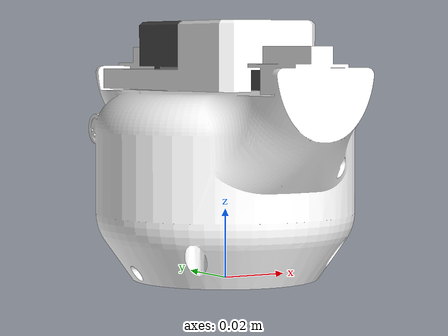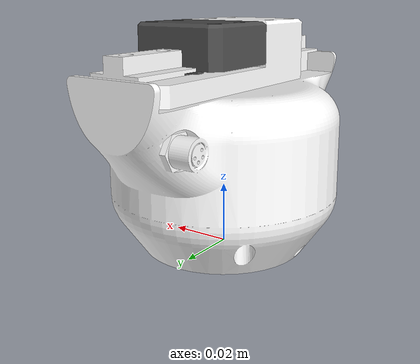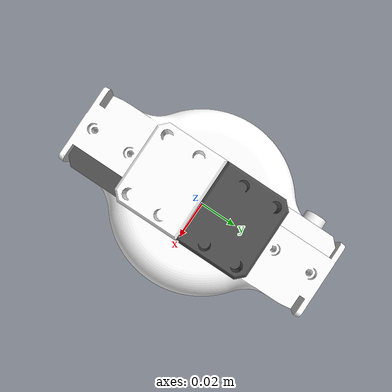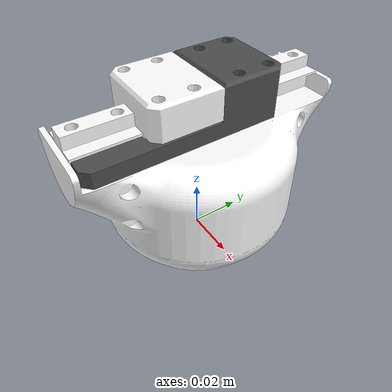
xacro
<?xml version="1.0" encoding="utf-8"?>
<robot name="ssg48_gripper" xmlns:xacro="http://www.ros.org/wiki/xacro">
  <link
    name="gripper_base_link">
    <inertial>
      <origin
        xyz="1.182E-08 5.7131E-10 0.0085909"
        rpy="0 0 0" />
      <mass
        value="0.034286" />
      <inertia
        ixx="1.3936E-05"
        ixy="-1.3394E-11"
        ixz="4.8912E-13"
        iyy="1.368E-05"
        iyz="1.8413E-13"
        izz="2.5457E-05" />
    </inertial>
    <visual>
      <origin
        xyz="0 0 0"
        rpy="0 0 0" />
      <geometry>
        <mesh
          filename="package://ssg48_gripper_description/meshes/gripper_base_link.stl" />
      </geometry>
      <material
        name="">
        <color
          rgba="1 1 1 1" />
      </material>
    </visual>
    <collision>
      <origin
        xyz="0 0 0"
        rpy="0 0 0" />
      <geometry>
        <mesh
          filename="package://ssg48_gripper_description/meshes/gripper_base_link.stl" />
      </geometry>
    </collision>
  </link>
  <link
    name="left_gripper_finger_link">
    <inertial>
      <origin
        xyz="0.0038194 -0.0097866 -0.0093404"
        rpy="0 0 0" />
      <mass
        value="0.011596" />
      <inertia
        ixx="4.1951E-06"
        ixy="7.1027E-07"
        ixz="3.2917E-07"
        iyy="1.5162E-06"
        iyz="-6.8315E-07"
        izz="4.847E-06" />
    </inertial>
    <visual>
      <origin
        xyz="0 0 0"
        rpy="0 0 0" />
      <geometry>
        <mesh
          filename="package://ssg48_gripper_description/meshes/left_gripper_finger_link.stl" />
      </geometry>
      <material
        name="">
        <color
          rgba="0.29804 0.29804 0.29804 1" />
      </material>
    </visual>
    <collision>
      <origin
        xyz="0 0 0"
        rpy="0 0 0" />
      <geometry>
        <mesh
          filename="package://ssg48_gripper_description/meshes/left_gripper_finger_link.stl" />
      </geometry>
    </collision>
  </link>
  <joint
    name="left_gripper_finger_joint"
    type="prismatic">
    <origin
      xyz="0 0.015 0.07435"
      rpy="0 0 0" />
    <parent
      link="gripper_base_link" />
    <child
      link="left_gripper_finger_link" />
    <axis
      xyz="0 1 0" />
    <limit
      lower="0"
      upper="0.024"
      effort="10"
      velocity="1" />
  </joint>
  <link
    name="right_gripper_finger_link">
    <inertial>
      <origin
        xyz="0 0 0"
        rpy="0 0 0" />
      <mass
        value="0" />
      <inertia
        ixx="0"
        ixy="0"
        ixz="0"
        iyy="0"
        iyz="0"
        izz="0" />
    </inertial>
    <visual>
      <origin
        xyz="0 0 0"
        rpy="0 0 0" />
      <geometry>
        <mesh
          filename="package://ssg48_gripper_description/meshes/right_gripper_finger_link.stl" />
      </geometry>
      <material
        name="">
        <color
          rgba="1 1 1 1" />
      </material>
    </visual>
    <collision>
      <origin
        xyz="0 0 0"
        rpy="0 0 0" />
      <geometry>
        <mesh
          filename="package://ssg48_gripper_description/meshes/right_gripper_finger_link.stl" />
      </geometry>
    </collision>
  </link>
  <joint
    name="right_gripper_finger_joint"
    type="prismatic">
    <origin
      xyz="0 -0.015 0.07435"
      rpy="0 0 0" />
    <parent
      link="gripper_base_link" />
    <child
      link="right_gripper_finger_link" />
    <axis
      xyz="0 -1 0" />
    <limit
      lower="0"
      upper="0.024"
      effort="10"
      velocity="1" />
    <mimic
      joint="left_gripper_finger_joint"
      multiplier="1"
      offset="0" />
  </joint>

</robot>
